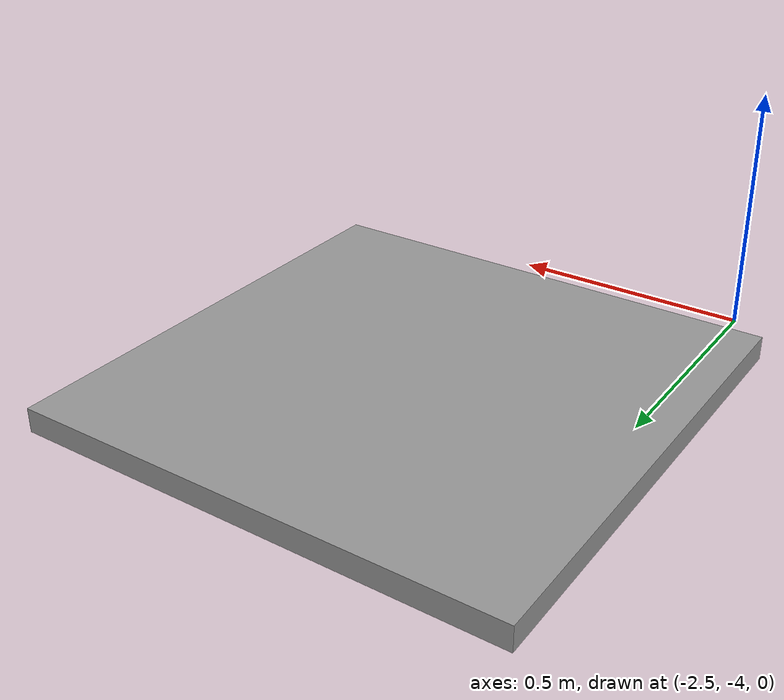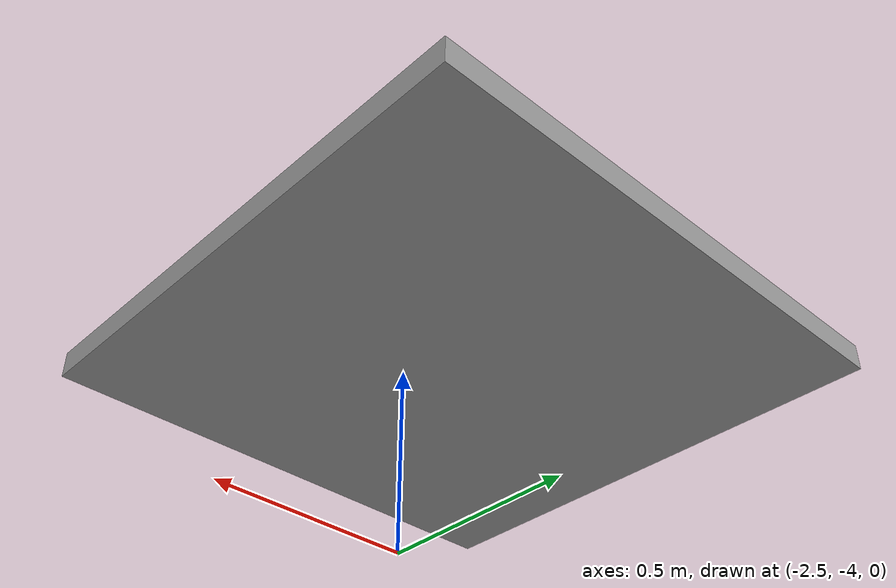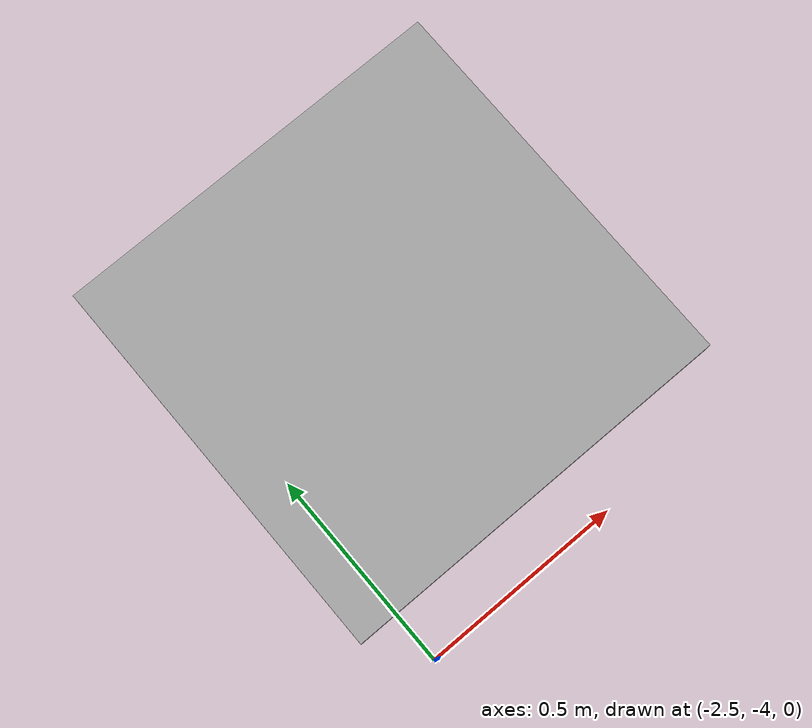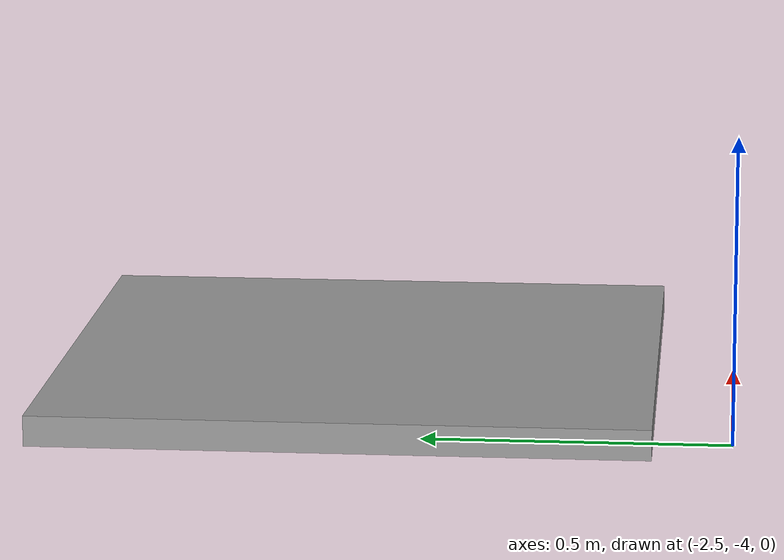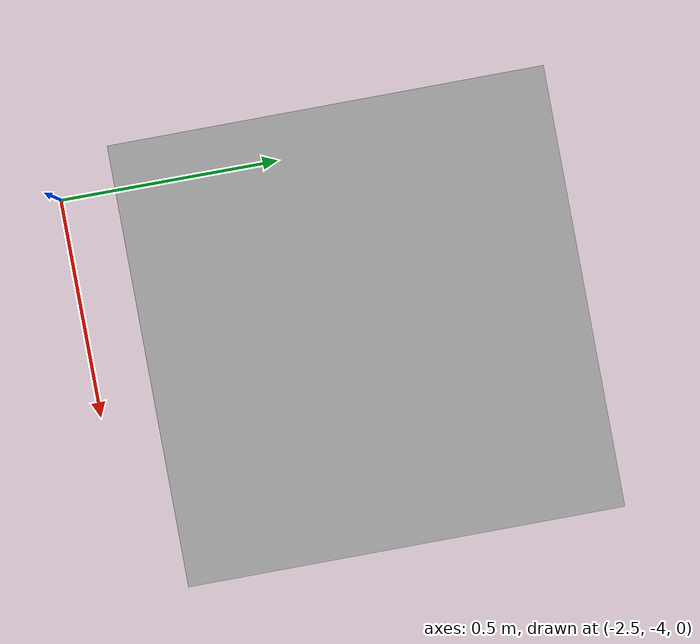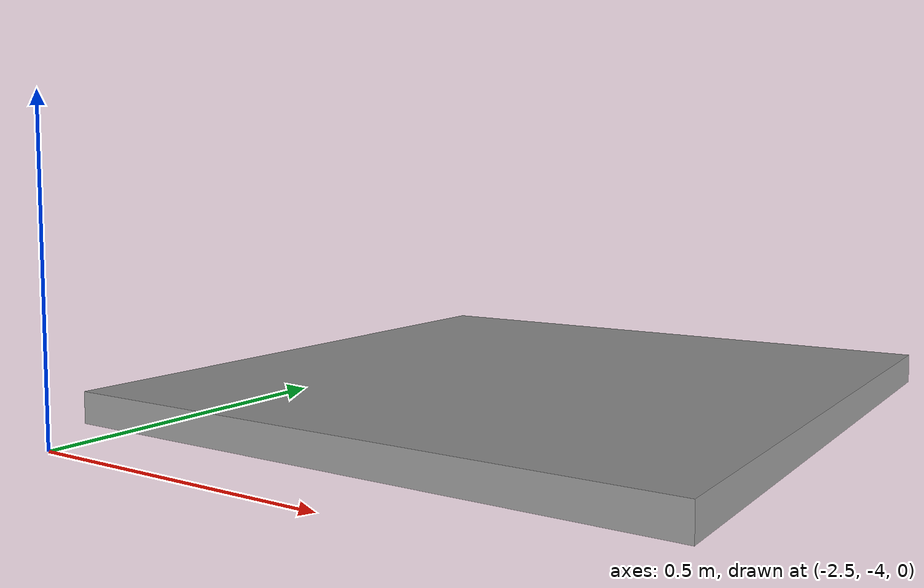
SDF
<?xml version='1.0'?>
<sdf version='1.7'>
  <model name='zemin'>
    <pose>-1.29992 -1.93635 0 0 -0 0</pose>
    <link name='Wall_0'>
      <collision name='Wall_0_Collision'>
        <geometry>
          <box>
            <size>1.01 1 0.05</size>
          </box>
        </geometry>
        <pose>0 0 0.025 0 -0 0</pose>
      </collision>
      <visual name='Wall_0_Visual'>
        <pose>0 0 0.025 0 -0 0</pose>
        <geometry>
          <box>
            <size>1.01 1 0.05</size>
          </box>
        </geometry>
        <material>
          <script>
            <uri>file://media/materials/scripts/gazebo.material</uri>
            <name>Gazebo/Grey</name>
          </script>
          <ambient>1 1 1 1</ambient>
        </material>
        <meta>
          <layer>0</layer>
        </meta>
      </visual>
      <pose>-0.794918 -1.43635 0 0 -0 0</pose>
    </link>
    <static>1</static>
  </model>
</sdf>
